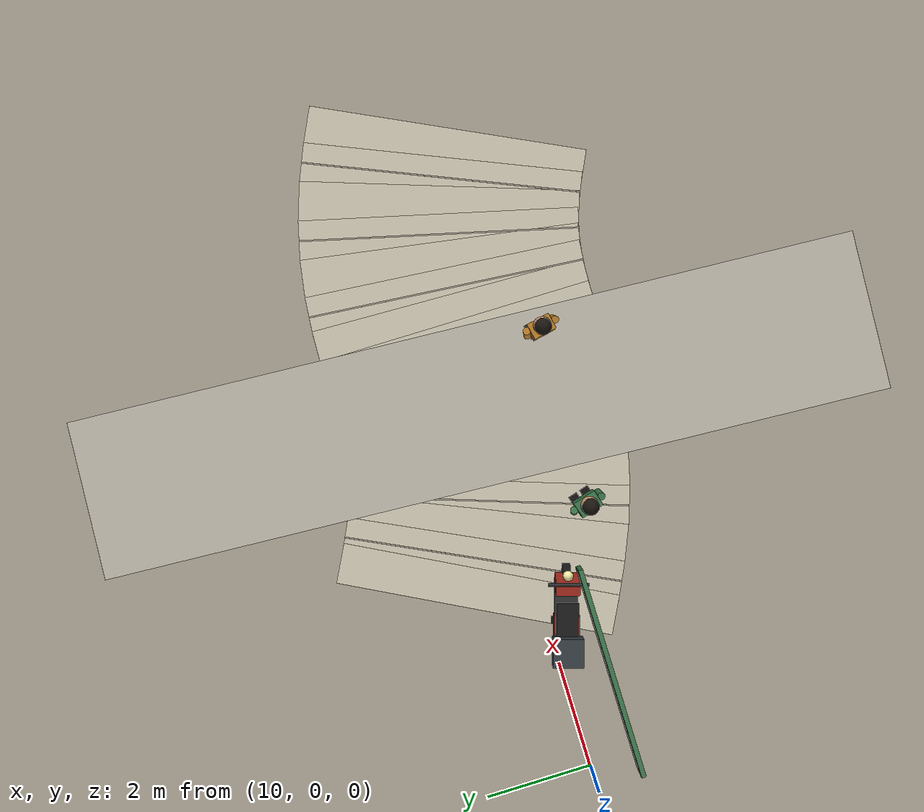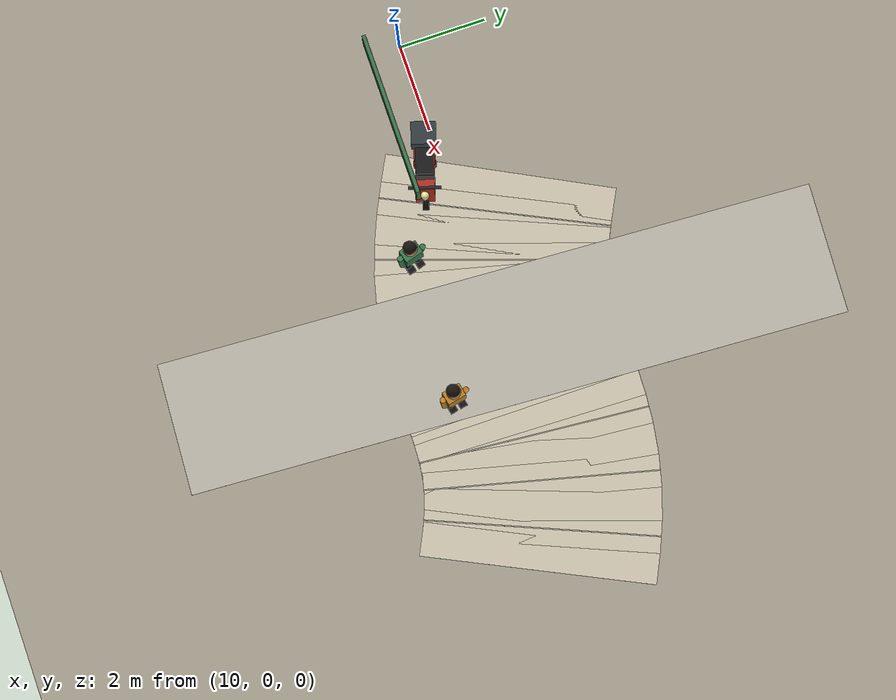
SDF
<sdf version="1.10">
 <world name="swan_market">
  <model name="ground">
   <static>true</static>
   <pose>15 0 -0.1 0 0 0</pose>
   <link name="body">
    <collision name="box_collision"><geometry><box><size>46 24 0.2</size></box></geometry></collision>
    <visual name="box_visual">
     <geometry><box><size>46 24 0.2</size></box></geometry>
     <material><ambient>0.64 0.61 0.55 1</ambient><diffuse>0.64 0.61 0.55 1</diffuse></material>
    </visual>
   </link>
  </model>
  <model name="market_paving_31">
   <static>true</static>
   <pose>13.75 1.0326 0.002 0 0 -0.48375</pose>
   <link name="body">
    <visual name="box_visual">
     <geometry><box><size>0.75 5.2 0.004</size></box></geometry>
     <material><ambient>0.79 0.76 0.68 1</ambient><diffuse>0.79 0.76 0.68 1</diffuse></material>
    </visual>
   </link>
  </model>
  <model name="market_paving_32">
   <static>true</static>
   <pose>14.25 0.77782 0.002 0 0 -0.45458</pose>
   <link name="body">
    <visual name="box_visual">
     <geometry><box><size>0.75 5.2 0.004</size></box></geometry>
     <material><ambient>0.79 0.76 0.68 1</ambient><diffuse>0.79 0.76 0.68 1</diffuse></material>
    </visual>
   </link>
  </model>
  <model name="paving_joint_32">
   <static>true</static>
   <pose>14.25 0.77782 0.0045 0 0 -0.45458</pose>
   <link name="body">
    <visual name="box_visual">
     <geometry><box><size>0.025 5.2 0.001</size></box></geometry>
     <material><ambient>0.67 0.64 0.57 1</ambient><diffuse>0.67 0.64 0.57 1</diffuse></material>
    </visual>
   </link>
  </model>
  <model name="market_paving_33">
   <static>true</static>
   <pose>14.75 0.54833 0.002 0 0 -0.40225</pose>
   <link name="body">
    <visual name="box_visual">
     <geometry><box><size>0.75 5.2 0.004</size></box></geometry>
     <material><ambient>0.79 0.76 0.68 1</ambient><diffuse>0.79 0.76 0.68 1</diffuse></material>
    </visual>
   </link>
  </model>
  <model name="market_paving_34">
   <static>true</static>
   <pose>15.25 0.35543 0.002 0 0 -0.33122</pose>
   <link name="body">
    <visual name="box_visual">
     <geometry><box><size>0.75 5.2 0.004</size></box></geometry>
     <material><ambient>0.79 0.76 0.68 1</ambient><diffuse>0.79 0.76 0.68 1</diffuse></material>
    </visual>
   </link>
  </model>
  <model name="paving_joint_34">
   <static>true</static>
   <pose>15.25 0.35543 0.0045 0 0 -0.33122</pose>
   <link name="body">
    <visual name="box_visual">
     <geometry><box><size>0.025 5.2 0.001</size></box></geometry>
     <material><ambient>0.67 0.64 0.57 1</ambient><diffuse>0.67 0.64 0.57 1</diffuse></material>
    </visual>
   </link>
  </model>
  <model name="market_paving_35">
   <static>true</static>
   <pose>15.75 0.20586 0.002 0 0 -0.2486</pose>
   <link name="body">
    <visual name="box_visual">
     <geometry><box><size>0.75 5.2 0.004</size></box></geometry>
     <material><ambient>0.79 0.76 0.68 1</ambient><diffuse>0.79 0.76 0.68 1</diffuse></material>
    </visual>
   </link>
  </model>
  <model name="market_paving_36">
   <static>true</static>
   <pose>16.25 0.10125 0.002 0 0 -0.16424</pose>
   <link name="body">
    <visual name="box_visual">
     <geometry><box><size>0.75 5.2 0.004</size></box></geometry>
     <material><ambient>0.79 0.76 0.68 1</ambient><diffuse>0.79 0.76 0.68 1</diffuse></material>
    </visual>
   </link>
  </model>
  <model name="paving_joint_36">
   <static>true</static>
   <pose>16.25 0.10125 0.0045 0 0 -0.16424</pose>
   <link name="body">
    <visual name="box_visual">
     <geometry><box><size>0.025 5.2 0.001</size></box></geometry>
     <material><ambient>0.67 0.64 0.57 1</ambient><diffuse>0.67 0.64 0.57 1</diffuse></material>
    </visual>
   </link>
  </model>
  <model name="market_paving_37">
   <static>true</static>
   <pose>16.75 0.038143 0.002 0 0 -0.089204</pose>
   <link name="body">
    <visual name="box_visual">
     <geometry><box><size>0.75 5.2 0.004</size></box></geometry>
     <material><ambient>0.79 0.76 0.68 1</ambient><diffuse>0.79 0.76 0.68 1</diffuse></material>
    </visual>
   </link>
  </model>
  <model name="market_paving_38">
   <static>true</static>
   <pose>17.25 0.0084221 0.002 0 0 -0.033398</pose>
   <link name="body">
    <visual name="box_visual">
     <geometry><box><size>0.75 5.2 0.004</size></box></geometry>
     <material><ambient>0.79 0.76 0.68 1</ambient><diffuse>0.79 0.76 0.68 1</diffuse></material>
    </visual>
   </link>
  </model>
  <model name="paving_joint_38">
   <static>true</static>
   <pose>17.25 0.0084221 0.0045 0 0 -0.033398</pose>
   <link name="body">
    <visual name="box_visual">
     <geometry><box><size>0.025 5.2 0.001</size></box></geometry>
     <material><ambient>0.67 0.64 0.57 1</ambient><diffuse>0.67 0.64 0.57 1</diffuse></material>
    </visual>
   </link>
  </model>
  <model name="market_paving_39">
   <static>true</static>
   <pose>17.75 0.00031537 0.002 0 0 -0.003781</pose>
   <link name="body">
    <visual name="box_visual">
     <geometry><box><size>0.75 5.2 0.004</size></box></geometry>
     <material><ambient>0.79 0.76 0.68 1</ambient><diffuse>0.79 0.76 0.68 1</diffuse></material>
    </visual>
   </link>
  </model>
  <model name="market_paving_40">
   <static>true</static>
   <pose>18.25 -0.00031537 0.002 0 0 -0.003781</pose>
   <link name="body">
    <visual name="box_visual">
     <geometry><box><size>0.75 5.2 0.004</size></box></geometry>
     <material><ambient>0.79 0.76 0.68 1</ambient><diffuse>0.79 0.76 0.68 1</diffuse></material>
    </visual>
   </link>
  </model>
  <model name="paving_joint_40">
   <static>true</static>
   <pose>18.25 -0.00031537 0.0045 0 0 -0.003781</pose>
   <link name="body">
    <visual name="box_visual">
     <geometry><box><size>0.025 5.2 0.001</size></box></geometry>
     <material><ambient>0.67 0.64 0.57 1</ambient><diffuse>0.67 0.64 0.57 1</diffuse></material>
    </visual>
   </link>
  </model>
  <model name="market_paving_41">
   <static>true</static>
   <pose>18.75 -0.0084221 0.002 0 0 -0.033398</pose>
   <link name="body">
    <visual name="box_visual">
     <geometry><box><size>0.75 5.2 0.004</size></box></geometry>
     <material><ambient>0.79 0.76 0.68 1</ambient><diffuse>0.79 0.76 0.68 1</diffuse></material>
    </visual>
   </link>
  </model>
  <model name="market_paving_42">
   <static>true</static>
   <pose>19.25 -0.038143 0.002 0 0 -0.089204</pose>
   <link name="body">
    <visual name="box_visual">
     <geometry><box><size>0.75 5.2 0.004</size></box></geometry>
     <material><ambient>0.79 0.76 0.68 1</ambient><diffuse>0.79 0.76 0.68 1</diffuse></material>
    </visual>
   </link>
  </model>
  <model name="paving_joint_42">
   <static>true</static>
   <pose>19.25 -0.038143 0.0045 0 0 -0.089204</pose>
   <link name="body">
    <visual name="box_visual">
     <geometry><box><size>0.025 5.2 0.001</size></box></geometry>
     <material><ambient>0.67 0.64 0.57 1</ambient><diffuse>0.67 0.64 0.57 1</diffuse></material>
    </visual>
   </link>
  </model>
  <model name="market_paving_43">
   <static>true</static>
   <pose>19.75 -0.10125 0.002 0 0 -0.16424</pose>
   <link name="body">
    <visual name="box_visual">
     <geometry><box><size>0.75 5.2 0.004</size></box></geometry>
     <material><ambient>0.79 0.76 0.68 1</ambient><diffuse>0.79 0.76 0.68 1</diffuse></material>
    </visual>
   </link>
  </model>
  <model name="market_paving_44">
   <static>true</static>
   <pose>20.25 -0.20586 0.002 0 0 -0.2486</pose>
   <link name="body">
    <visual name="box_visual">
     <geometry><box><size>0.75 5.2 0.004</size></box></geometry>
     <material><ambient>0.79 0.76 0.68 1</ambient><diffuse>0.79 0.76 0.68 1</diffuse></material>
    </visual>
   </link>
  </model>
  <model name="paving_joint_44">
   <static>true</static>
   <pose>20.25 -0.20586 0.0045 0 0 -0.2486</pose>
   <link name="body">
    <visual name="box_visual">
     <geometry><box><size>0.025 5.2 0.001</size></box></geometry>
     <material><ambient>0.67 0.64 0.57 1</ambient><diffuse>0.67 0.64 0.57 1</diffuse></material>
    </visual>
   </link>
  </model>
  <model name="market_paving_45">
   <static>true</static>
   <pose>20.75 -0.35543 0.002 0 0 -0.33122</pose>
   <link name="body">
    <visual name="box_visual">
     <geometry><box><size>0.75 5.2 0.004</size></box></geometry>
     <material><ambient>0.79 0.76 0.68 1</ambient><diffuse>0.79 0.76 0.68 1</diffuse></material>
    </visual>
   </link>
  </model>
  <model name="market_paving_46">
   <static>true</static>
   <pose>21.25 -0.54833 0.002 0 0 -0.40225</pose>
   <link name="body">
    <visual name="box_visual">
     <geometry><box><size>0.75 5.2 0.004</size></box></geometry>
     <material><ambient>0.79 0.76 0.68 1</ambient><diffuse>0.79 0.76 0.68 1</diffuse></material>
    </visual>
   </link>
  </model>
  <model name="paving_joint_46">
   <static>true</static>
   <pose>21.25 -0.54833 0.0045 0 0 -0.40225</pose>
   <link name="body">
    <visual name="box_visual">
     <geometry><box><size>0.025 5.2 0.001</size></box></geometry>
     <material><ambient>0.67 0.64 0.57 1</ambient><diffuse>0.67 0.64 0.57 1</diffuse></material>
    </visual>
   </link>
  </model>
  <model name="market_paving_47">
   <static>true</static>
   <pose>21.75 -0.77782 0.002 0 0 -0.45458</pose>
   <link name="body">
    <visual name="box_visual">
     <geometry><box><size>0.75 5.2 0.004</size></box></geometry>
     <material><ambient>0.79 0.76 0.68 1</ambient><diffuse>0.79 0.76 0.68 1</diffuse></material>
    </visual>
   </link>
  </model>
  <model name="cross_aisle">
   <static>true</static>
   <pose>17 0.019772 0.006 0 0 -0.058381</pose>
   <link name="body">
    <visual name="box_visual">
     <geometry><box><size>3 15 0.002</size></box></geometry>
     <material><ambient>0.72 0.7 0.65 1</ambient><diffuse>0.72 0.7 0.65 1</diffuse></material>
    </visual>
   </link>
  </model>
  <model name="signboard_5">
   <static>true</static>
   <pose>12 -0.79747 2.24 0 0 0</pose>
   <link name="body">
    <collision name="box_collision"><geometry><box><size>3.65 0.08 0.72</size></box></geometry></collision>
    <visual name="box_visual">
     <geometry><box><size>3.65 0.08 0.72</size></box></geometry>
     <material><ambient>0.23 0.46 0.29 1</ambient><diffuse>0.23 0.46 0.29 1</diffuse></material>
    </visual>
   </link>
  </model>
  <model name="sign_shop_5">
   <static>true</static>
   <pose>12 -0.74947 2.24 0 0 3.1416</pose>
   <link name="body">
    <visual name="lettering">
     <geometry>
      <mesh><uri>model://swan_market_assets/meshes/shop_5.dae</uri><scale>3.6 1 0.675</scale></mesh>
     </geometry>
     <material>
      <ambient>1 1 1 1</ambient>
      <diffuse>1 1 1 1</diffuse>
      <emissive>0 0 0 1</emissive>
      <pbr>
       <metal>
        <albedo_map>model://swan_market_assets/materials/textures/shop_5.png</albedo_map>
        <metalness>0</metalness>
        <roughness>1</roughness>
       </metal>
      </pbr>
     </material>
    </visual>
   </link>
  </model>
  <model name="motorcycle_delivery">
   <static>true</static>
   <pose>12.93 -0.40058 0 0 0 -0.30528</pose>
   <link name="body">
    <collision name="tire_0_collision">
     <pose>-0.61 0 0.25 1.5708 0 0</pose>
     <geometry><cylinder><radius>0.25</radius><length>0.14</length></cylinder></geometry>
    </collision>
    <visual name="tire_0_visual">
     <pose>-0.61 0 0.25 1.5708 0 0</pose>
     <geometry><cylinder><radius>0.25</radius><length>0.14</length></cylinder></geometry>
     <material><ambient>0.075 0.075 0.07 1</ambient><diffuse>0.075 0.075 0.07 1</diffuse></material>
    </visual>
    <visual name="hub_0_visual">
     <pose>-0.61 0 0.25 1.5708 0 0</pose>
     <geometry><cylinder><radius>0.13</radius><length>0.145</length></cylinder></geometry>
     <material><ambient>0.57 0.59 0.6 1</ambient><diffuse>0.57 0.59 0.6 1</diffuse></material>
    </visual>
    <collision name="tire_1_collision">
     <pose>0.62 0 0.25 1.5708 0 0</pose>
     <geometry><cylinder><radius>0.25</radius><length>0.14</length></cylinder></geometry>
    </collision>
    <visual name="tire_1_visual">
     <pose>0.62 0 0.25 1.5708 0 0</pose>
     <geometry><cylinder><radius>0.25</radius><length>0.14</length></cylinder></geometry>
     <material><ambient>0.075 0.075 0.07 1</ambient><diffuse>0.075 0.075 0.07 1</diffuse></material>
    </visual>
    <visual name="hub_1_visual">
     <pose>0.62 0 0.25 1.5708 0 0</pose>
     <geometry><cylinder><radius>0.13</radius><length>0.145</length></cylinder></geometry>
     <material><ambient>0.57 0.59 0.6 1</ambient><diffuse>0.57 0.59 0.6 1</diffuse></material>
    </visual>
    <collision name="deck_collision">
     <pose>0 0 0.33 0 0 0</pose>
     <geometry><box><size>1.2 0.43 0.17</size></box></geometry>
    </collision>
    <visual name="deck_visual">
     <pose>0 0 0.33 0 0 0</pose>
     <geometry><box><size>1.2 0.43 0.17</size></box></geometry>
     <material><ambient>0.18 0.18 0.18 1</ambient><diffuse>0.18 0.18 0.18 1</diffuse></material>
    </visual>
    <collision name="rear_body_collision">
     <pose>-0.36 0 0.59 0 0 0</pose>
     <geometry><box><size>0.65 0.46 0.4</size></box></geometry>
    </collision>
    <visual name="rear_body_visual">
     <pose>-0.36 0 0.59 0 0 0</pose>
     <geometry><box><size>0.65 0.46 0.4</size></box></geometry>
     <material><ambient>0.65 0.17 0.12 1</ambient><diffuse>0.65 0.17 0.12 1</diffuse></material>
    </visual>
    <collision name="seat_collision">
     <pose>-0.2 0 0.83 0 0 0</pose>
     <geometry><box><size>0.8 0.4 0.12</size></box></geometry>
    </collision>
    <visual name="seat_visual">
     <pose>-0.2 0 0.83 0 0 0</pose>
     <geometry><box><size>0.8 0.4 0.12</size></box></geometry>
     <material><ambient>0.1 0.1 0.1 1</ambient><diffuse>0.1 0.1 0.1 1</diffuse></material>
    </visual>
    <collision name="front_fairing_collision">
     <pose>0.53 0 0.69 0 -0.2 0</pose>
     <geometry><box><size>0.23 0.43 0.69</size></box></geometry>
    </collision>
    <visual name="front_fairing_visual">
     <pose>0.53 0 0.69 0 -0.2 0</pose>
     <geometry><box><size>0.23 0.43 0.69</size></box></geometry>
     <material><ambient>0.65 0.17 0.12 1</ambient><diffuse>0.65 0.17 0.12 1</diffuse></material>
    </visual>
    <collision name="handlebar_collision">
     <pose>0.56 0 1.12 1.5708 0 0</pose>
     <geometry><cylinder><radius>0.035</radius><length>0.72</length></cylinder></geometry>
    </collision>
    <visual name="handlebar_visual">
     <pose>0.56 0 1.12 1.5708 0 0</pose>
     <geometry><cylinder><radius>0.035</radius><length>0.72</length></cylinder></geometry>
     <material><ambient>0.18 0.18 0.18 1</ambient><diffuse>0.18 0.18 0.18 1</diffuse></material>
    </visual>
    <visual name="headlight_visual">
     <pose>0.7 0 0.94 0 0 0</pose>
     <geometry><sphere><radius>0.095</radius></sphere></geometry>
     <material><ambient>0.96 0.92 0.66 1</ambient><diffuse>0.96 0.92 0.66 1</diffuse></material>
    </visual>
    <collision name="delivery_box_collision">
     <pose>-0.65 0 1.01 0 0 0</pose>
     <geometry><box><size>0.51 0.55 0.48</size></box></geometry>
    </collision>
    <visual name="delivery_box_visual">
     <pose>-0.65 0 1.01 0 0 0</pose>
     <geometry><box><size>0.51 0.55 0.48</size></box></geometry>
     <material><ambient>0.2 0.23 0.25 1</ambient><diffuse>0.2 0.23 0.25 1</diffuse></material>
    </visual>
    <collision name="stand_collision">
     <pose>-0.2 0 0.1 0 0 0</pose>
     <geometry><box><size>0.12 0.5 0.2</size></box></geometry>
    </collision>
    <visual name="stand_visual">
     <pose>-0.2 0 0.1 0 0 0</pose>
     <geometry><box><size>0.12 0.5 0.2</size></box></geometry>
     <material><ambient>0.12 0.12 0.12 1</ambient><diffuse>0.12 0.12 0.12 1</diffuse></material>
    </visual>
   </link>
  </model>
  <model name="crowd_05">
   <static>true</static>
   <pose>14.744 -1.3209 0 0 0 0.27667</pose>
   <link name="body">
    <collision name="leg_-1_collision">
     <pose>0 -0.12 0.4 0 0 0</pose>
     <geometry><cylinder><radius>0.085</radius><length>0.68</length></cylinder></geometry>
    </collision>
    <visual name="leg_-1_visual">
     <pose>0 -0.12 0.4 0 0 0</pose>
     <geometry><cylinder><radius>0.085</radius><length>0.68</length></cylinder></geometry>
     <material><ambient>0.12 0.15 0.18 1</ambient><diffuse>0.12 0.15 0.18 1</diffuse></material>
    </visual>
    <collision name="shoe_-1_collision">
     <pose>0.06 -0.12 0.055 0 0 0</pose>
     <geometry><box><size>0.28 0.17 0.11</size></box></geometry>
    </collision>
    <visual name="shoe_-1_visual">
     <pose>0.06 -0.12 0.055 0 0 0</pose>
     <geometry><box><size>0.28 0.17 0.11</size></box></geometry>
     <material><ambient>0.08 0.07 0.06 1</ambient><diffuse>0.08 0.07 0.06 1</diffuse></material>
    </visual>
    <collision name="arm_-1_collision">
     <pose>0.02 -0.27 1.02 0 -0.12 0</pose>
     <geometry><cylinder><radius>0.068</radius><length>0.48</length></cylinder></geometry>
    </collision>
    <visual name="arm_-1_visual">
     <pose>0.02 -0.27 1.02 0 -0.12 0</pose>
     <geometry><cylinder><radius>0.068</radius><length>0.48</length></cylinder></geometry>
     <material><ambient>0.23 0.46 0.29 1</ambient><diffuse>0.23 0.46 0.29 1</diffuse></material>
    </visual>
    <collision name="leg_1_collision">
     <pose>0 0.12 0.4 0 0 0</pose>
     <geometry><cylinder><radius>0.085</radius><length>0.68</length></cylinder></geometry>
    </collision>
    <visual name="leg_1_visual">
     <pose>0 0.12 0.4 0 0 0</pose>
     <geometry><cylinder><radius>0.085</radius><length>0.68</length></cylinder></geometry>
     <material><ambient>0.12 0.15 0.18 1</ambient><diffuse>0.12 0.15 0.18 1</diffuse></material>
    </visual>
    <collision name="shoe_1_collision">
     <pose>0.06 0.12 0.055 0 0 0</pose>
     <geometry><box><size>0.28 0.17 0.11</size></box></geometry>
    </collision>
    <visual name="shoe_1_visual">
     <pose>0.06 0.12 0.055 0 0 0</pose>
     <geometry><box><size>0.28 0.17 0.11</size></box></geometry>
     <material><ambient>0.08 0.07 0.06 1</ambient><diffuse>0.08 0.07 0.06 1</diffuse></material>
    </visual>
    <collision name="arm_1_collision">
     <pose>0.02 0.27 1.02 0 0.12 0</pose>
     <geometry><cylinder><radius>0.068</radius><length>0.48</length></cylinder></geometry>
    </collision>
    <visual name="arm_1_visual">
     <pose>0.02 0.27 1.02 0 0.12 0</pose>
     <geometry><cylinder><radius>0.068</radius><length>0.48</length></cylinder></geometry>
     <material><ambient>0.23 0.46 0.29 1</ambient><diffuse>0.23 0.46 0.29 1</diffuse></material>
    </visual>
    <collision name="torso_collision">
     <pose>0 0 1.02 0 0 0</pose>
     <geometry><box><size>0.3 0.43 0.58</size></box></geometry>
    </collision>
    <visual name="torso_visual">
     <pose>0 0 1.02 0 0 0</pose>
     <geometry><box><size>0.3 0.43 0.58</size></box></geometry>
     <material><ambient>0.23 0.46 0.29 1</ambient><diffuse>0.23 0.46 0.29 1</diffuse></material>
    </visual>
    <visual name="neck_visual">
     <pose>0 0 1.37 0 0 0</pose>
     <geometry><cylinder><radius>0.07</radius><length>0.13</length></cylinder></geometry>
     <material><ambient>0.77 0.56 0.4 1</ambient><diffuse>0.77 0.56 0.4 1</diffuse></material>
    </visual>
    <collision name="head_collision">
     <pose>0 0 1.57 0 0 0</pose>
     <geometry><sphere><radius>0.16</radius></sphere></geometry>
    </collision>
    <visual name="head_visual">
     <pose>0 0 1.57 0 0 0</pose>
     <geometry><sphere><radius>0.16</radius></sphere></geometry>
     <material><ambient>0.77 0.56 0.4 1</ambient><diffuse>0.77 0.56 0.4 1</diffuse></material>
    </visual>
    <visual name="hair_visual">
     <pose>-0.025 0 1.63 0 0 0</pose>
     <geometry><sphere><radius>0.155</radius></sphere></geometry>
     <material><ambient>0.1 0.08 0.06 1</ambient><diffuse>0.1 0.08 0.06 1</diffuse></material>
    </visual>
   </link>
  </model>
  <model name="crowd_07">
   <static>true</static>
   <pose>18 -1.45 0 0 0 0.2</pose>
   <link name="body">
    <collision name="leg_-1_collision">
     <pose>0 -0.12 0.4 0 0 0</pose>
     <geometry><cylinder><radius>0.085</radius><length>0.68</length></cylinder></geometry>
    </collision>
    <visual name="leg_-1_visual">
     <pose>0 -0.12 0.4 0 0 0</pose>
     <geometry><cylinder><radius>0.085</radius><length>0.68</length></cylinder></geometry>
     <material><ambient>0.12 0.15 0.18 1</ambient><diffuse>0.12 0.15 0.18 1</diffuse></material>
    </visual>
    <collision name="shoe_-1_collision">
     <pose>0.06 -0.12 0.055 0 0 0</pose>
     <geometry><box><size>0.28 0.17 0.11</size></box></geometry>
    </collision>
    <visual name="shoe_-1_visual">
     <pose>0.06 -0.12 0.055 0 0 0</pose>
     <geometry><box><size>0.28 0.17 0.11</size></box></geometry>
     <material><ambient>0.08 0.07 0.06 1</ambient><diffuse>0.08 0.07 0.06 1</diffuse></material>
    </visual>
    <collision name="arm_-1_collision">
     <pose>0.02 -0.27 1.02 0 -0.12 0</pose>
     <geometry><cylinder><radius>0.068</radius><length>0.48</length></cylinder></geometry>
    </collision>
    <visual name="arm_-1_visual">
     <pose>0.02 -0.27 1.02 0 -0.12 0</pose>
     <geometry><cylinder><radius>0.068</radius><length>0.48</length></cylinder></geometry>
     <material><ambient>0.72 0.49 0.15 1</ambient><diffuse>0.72 0.49 0.15 1</diffuse></material>
    </visual>
    <collision name="leg_1_collision">
     <pose>0 0.12 0.4 0 0 0</pose>
     <geometry><cylinder><radius>0.085</radius><length>0.68</length></cylinder></geometry>
    </collision>
    <visual name="leg_1_visual">
     <pose>0 0.12 0.4 0 0 0</pose>
     <geometry><cylinder><radius>0.085</radius><length>0.68</length></cylinder></geometry>
     <material><ambient>0.12 0.15 0.18 1</ambient><diffuse>0.12 0.15 0.18 1</diffuse></material>
    </visual>
    <collision name="shoe_1_collision">
     <pose>0.06 0.12 0.055 0 0 0</pose>
     <geometry><box><size>0.28 0.17 0.11</size></box></geometry>
    </collision>
    <visual name="shoe_1_visual">
     <pose>0.06 0.12 0.055 0 0 0</pose>
     <geometry><box><size>0.28 0.17 0.11</size></box></geometry>
     <material><ambient>0.08 0.07 0.06 1</ambient><diffuse>0.08 0.07 0.06 1</diffuse></material>
    </visual>
    <collision name="arm_1_collision">
     <pose>0.02 0.27 1.02 0 0.12 0</pose>
     <geometry><cylinder><radius>0.068</radius><length>0.48</length></cylinder></geometry>
    </collision>
    <visual name="arm_1_visual">
     <pose>0.02 0.27 1.02 0 0.12 0</pose>
     <geometry><cylinder><radius>0.068</radius><length>0.48</length></cylinder></geometry>
     <material><ambient>0.72 0.49 0.15 1</ambient><diffuse>0.72 0.49 0.15 1</diffuse></material>
    </visual>
    <collision name="torso_collision">
     <pose>0 0 1.02 0 0 0</pose>
     <geometry><box><size>0.3 0.43 0.58</size></box></geometry>
    </collision>
    <visual name="torso_visual">
     <pose>0 0 1.02 0 0 0</pose>
     <geometry><box><size>0.3 0.43 0.58</size></box></geometry>
     <material><ambient>0.72 0.49 0.15 1</ambient><diffuse>0.72 0.49 0.15 1</diffuse></material>
    </visual>
    <visual name="neck_visual">
     <pose>0 0 1.37 0 0 0</pose>
     <geometry><cylinder><radius>0.07</radius><length>0.13</length></cylinder></geometry>
     <material><ambient>0.77 0.56 0.4 1</ambient><diffuse>0.77 0.56 0.4 1</diffuse></material>
    </visual>
    <collision name="head_collision">
     <pose>0 0 1.57 0 0 0</pose>
     <geometry><sphere><radius>0.16</radius></sphere></geometry>
    </collision>
    <visual name="head_visual">
     <pose>0 0 1.57 0 0 0</pose>
     <geometry><sphere><radius>0.16</radius></sphere></geometry>
     <material><ambient>0.77 0.56 0.4 1</ambient><diffuse>0.77 0.56 0.4 1</diffuse></material>
    </visual>
    <visual name="hair_visual">
     <pose>-0.025 0 1.63 0 0 0</pose>
     <geometry><sphere><radius>0.155</radius></sphere></geometry>
     <material><ambient>0.1 0.08 0.06 1</ambient><diffuse>0.1 0.08 0.06 1</diffuse></material>
    </visual>
   </link>
  </model>
 </world>
</sdf>
